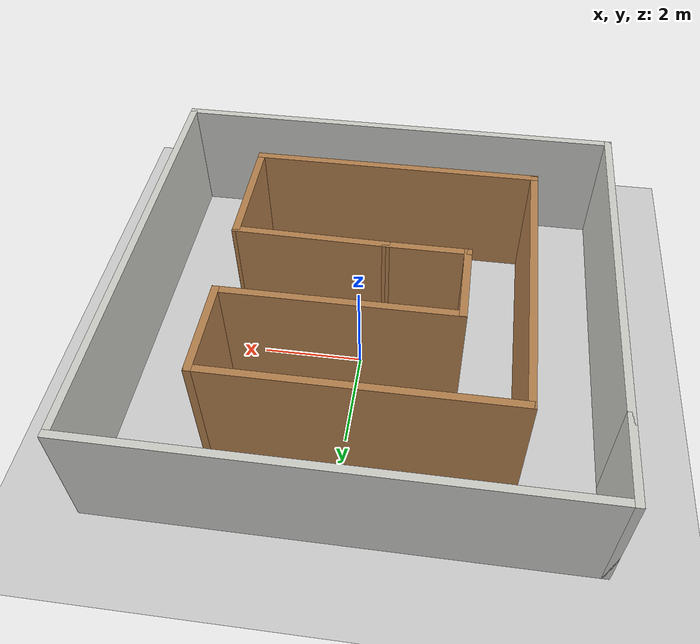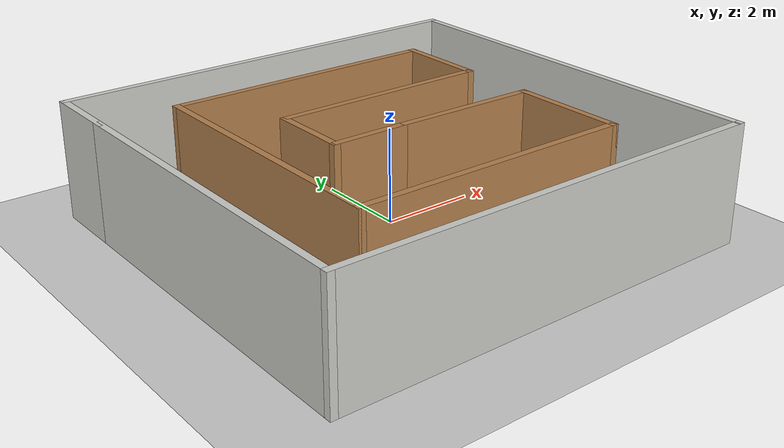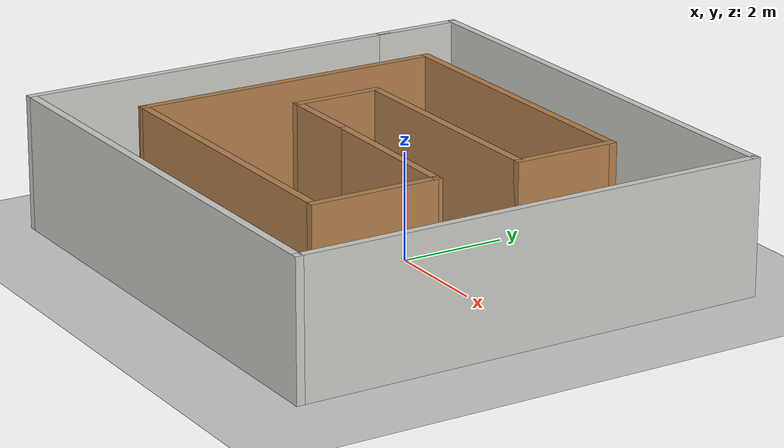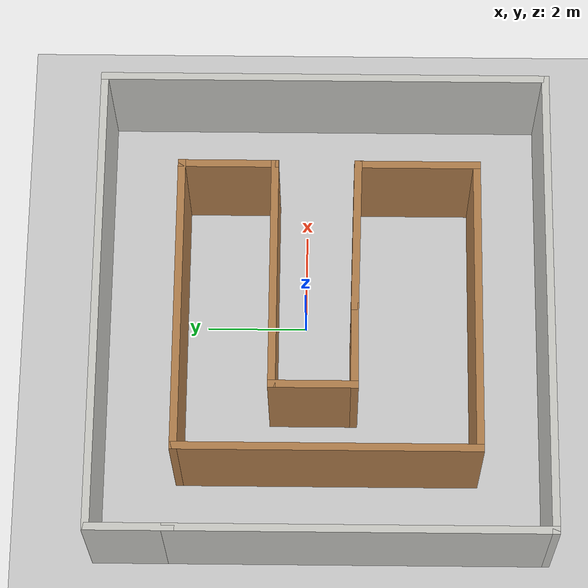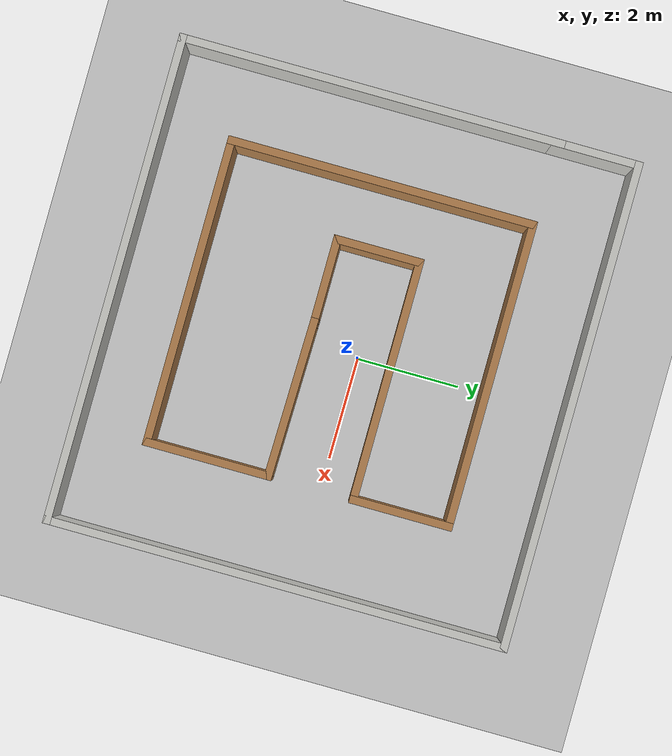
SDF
<sdf version="1.6">
 <world name="default">
  <model name="yarab_tany">
   <pose>-0.175 -0.335 0 0 -0 0</pose>
   <link name="Wall_10">
    <collision name="Wall_10_Collision">
     <geometry><box><size>6 0.15 2.5</size></box></geometry>
     <pose>0 0 1.25 0 -0 0</pose>
    </collision>
    <visual name="Wall_10_Visual">
     <pose>0 0 1.25 0 -0 0</pose>
     <geometry><box><size>6 0.15 2.5</size></box></geometry>
     <material>
      <script><uri>file://media/materials/scripts/gazebo.material</uri><name>Gazebo/Wood</name></script>
      <ambient>1 1 1 1</ambient>
     </material>
     <meta><layer>0</layer></meta>
    </visual>
    <pose>-0.15 2.825 0 0 -0 3.14159</pose>
   </link>
   <link name="Wall_11">
    <collision name="Wall_11_Collision">
     <geometry><box><size>6 0.15 2.5</size></box></geometry>
     <pose>0 0 1.25 0 -0 0</pose>
    </collision>
    <visual name="Wall_11_Visual">
     <pose>0 0 1.25 0 -0 0</pose>
     <geometry><box><size>6 0.15 2.5</size></box></geometry>
     <material>
      <script><uri>file://media/materials/scripts/gazebo.material</uri><name>Gazebo/Wood</name></script>
      <ambient>1 1 1 1</ambient>
     </material>
     <meta><layer>0</layer></meta>
    </visual>
    <pose>-3.075 -0.1 0 0 -0 -1.5708</pose>
   </link>
   <link name="Wall_13">
    <collision name="Wall_13_Collision">
     <geometry><box><size>6 0.15 2.5</size></box></geometry>
     <pose>0 0 1.25 0 -0 0</pose>
    </collision>
    <visual name="Wall_13_Visual">
     <pose>0 0 1.25 0 -0 0</pose>
     <geometry><box><size>6 0.15 2.5</size></box></geometry>
     <material>
      <script><uri>file://media/materials/scripts/gazebo.material</uri><name>Gazebo/Wood</name></script>
      <ambient>1 1 1 1</ambient>
     </material>
     <meta><layer>0</layer></meta>
    </visual>
    <pose>-0.15 -3.025 0 0 -0 0</pose>
   </link>
   <link name="Wall_14">
    <collision name="Wall_14_Collision">
     <geometry><box><size>2.5 0.15 2.5</size></box></geometry>
     <pose>0 0 1.25 0 -0 0</pose>
    </collision>
    <visual name="Wall_14_Visual">
     <pose>0 0 1.25 0 -0 0</pose>
     <geometry><box><size>2.5 0.15 2.5</size></box></geometry>
     <material>
      <script><uri>file://media/materials/scripts/gazebo.material</uri><name>Gazebo/Wood</name></script>
      <ambient>1 1 1 1</ambient>
     </material>
     <meta><layer>0</layer></meta>
    </visual>
    <pose>2.775 -1.85 0 0 -0 1.5708</pose>
   </link>
   <link name="Wall_15">
    <collision name="Wall_15_Collision">
     <geometry><box><size>3.15042 0.15 2.5</size></box></geometry>
     <pose>0 0 1.25 0 -0 0</pose>
    </collision>
    <visual name="Wall_15_Visual">
     <pose>0 0 1.25 0 -0 0</pose>
     <geometry><box><size>3.15042 0.15 2.5</size></box></geometry>
     <material>
      <script><uri>file://media/materials/scripts/gazebo.material</uri><name>Gazebo/Wood</name></script>
      <ambient>1 1 1 1</ambient>
     </material>
     <meta><layer>0</layer></meta>
    </visual>
    <pose>1.275 -0.65 0 0 -0 3.12493</pose>
   </link>
   <link name="Wall_18">
    <collision name="Wall_18_Collision">
     <geometry><box><size>1.75 0.15 2.5</size></box></geometry>
     <pose>0 0 1.25 0 -0 0</pose>
    </collision>
    <visual name="Wall_18_Visual">
     <pose>0 0 1.25 0 -0 0</pose>
     <geometry><box><size>1.75 0.15 2.5</size></box></geometry>
     <material>
      <script><uri>file://media/materials/scripts/gazebo.material</uri><name>Gazebo/CeilingTiled</name></script>
      <ambient>1 1 1 1</ambient>
     </material>
     <meta><layer>0</layer></meta>
    </visual>
    <pose>-4.675 3.625 0 0 -0 1.5708</pose>
   </link>
   <link name="Wall_19">
    <collision name="Wall_19_Collision">
     <geometry><box><size>9.5 0.15 2.5</size></box></geometry>
     <pose>0 0 1.25 0 -0 0</pose>
    </collision>
    <visual name="Wall_19_Visual">
     <pose>0 0 1.25 0 -0 0</pose>
     <geometry><box><size>9.5 0.15 2.5</size></box></geometry>
     <material>
      <script><uri>file://media/materials/scripts/gazebo.material</uri><name>Gazebo/CeilingTiled</name></script>
      <ambient>1 1 1 1</ambient>
     </material>
     <meta><layer>0</layer></meta>
    </visual>
    <pose>-0 4.425 0 0 -0 0</pose>
   </link>
   <link name="Wall_20">
    <collision name="Wall_20_Collision">
     <geometry><box><size>9 0.15 2.5</size></box></geometry>
     <pose>0 0 1.25 0 -0 0</pose>
    </collision>
    <visual name="Wall_20_Visual">
     <pose>0 0 1.25 0 -0 0</pose>
     <geometry><box><size>9 0.15 2.5</size></box></geometry>
     <material>
      <script><uri>file://media/materials/scripts/gazebo.material</uri><name>Gazebo/CeilingTiled</name></script>
      <ambient>1 1 1 1</ambient>
     </material>
     <meta><layer>0</layer></meta>
    </visual>
    <pose>4.675 0 0 0 -0 -1.5708</pose>
   </link>
   <link name="Wall_21">
    <collision name="Wall_21_Collision">
     <geometry><box><size>9.5 0.15 2.5</size></box></geometry>
     <pose>0 0 1.25 0 -0 0</pose>
    </collision>
    <visual name="Wall_21_Visual">
     <pose>0 0 1.25 0 -0 0</pose>
     <geometry><box><size>9.5 0.15 2.5</size></box></geometry>
     <material>
      <script><uri>file://media/materials/scripts/gazebo.material</uri><name>Gazebo/CeilingTiled</name></script>
      <ambient>1 1 1 1</ambient>
     </material>
     <meta><layer>0</layer></meta>
    </visual>
    <pose>-0 -4.425 0 0 -0 3.14159</pose>
   </link>
   <link name="Wall_22">
    <collision name="Wall_22_Collision">
     <geometry><box><size>7.5 0.15 2.5</size></box></geometry>
     <pose>0 0 1.25 0 -0 0</pose>
    </collision>
    <visual name="Wall_22_Visual">
     <pose>0 0 1.25 0 -0 0</pose>
     <geometry><box><size>7.5 0.15 2.5</size></box></geometry>
     <material>
      <script><uri>file://media/materials/scripts/gazebo.material</uri><name>Gazebo/CeilingTiled</name></script>
      <ambient>1 1 1 1</ambient>
     </material>
     <meta><layer>0</layer></meta>
    </visual>
    <pose>-4.675 -0.75 0 0 -0 1.5708</pose>
   </link>
   <link name="Wall_4">
    <collision name="Wall_4_Collision">
     <geometry><box><size>1.75 0.15 2.5</size></box></geometry>
     <pose>0 0 1.25 0 -0 0</pose>
    </collision>
    <visual name="Wall_4_Visual">
     <pose>0 0 1.25 0 -0 0</pose>
     <geometry><box><size>1.75 0.15 2.5</size></box></geometry>
     <material>
      <script><uri>file://media/materials/scripts/gazebo.material</uri><name>Gazebo/Wood</name></script>
      <ambient>1 1 1 1</ambient>
     </material>
     <meta><layer>0</layer></meta>
    </visual>
    <pose>-1.025 -0.625 0 0 -0 3.14159</pose>
   </link>
   <link name="Wall_5">
    <collision name="Wall_5_Collision">
     <geometry><box><size>1.75 0.15 2.5</size></box></geometry>
     <pose>0 0 1.25 0 -0 0</pose>
    </collision>
    <visual name="Wall_5_Visual">
     <pose>0 0 1.25 0 -0 0</pose>
     <geometry><box><size>1.75 0.15 2.5</size></box></geometry>
     <material>
      <script><uri>file://media/materials/scripts/gazebo.material</uri><name>Gazebo/Wood</name></script>
      <ambient>1 1 1 1</ambient>
     </material>
     <meta><layer>0</layer></meta>
    </visual>
    <pose>-1.825 0.175 0 0 -0 1.5708</pose>
   </link>
   <link name="Wall_6">
    <collision name="Wall_6_Collision">
     <geometry><box><size>4.75 0.15 2.5</size></box></geometry>
     <pose>0 0 1.25 0 -0 0</pose>
    </collision>
    <visual name="Wall_6_Visual">
     <pose>0 0 1.25 0 -0 0</pose>
     <geometry><box><size>4.75 0.15 2.5</size></box></geometry>
     <material>
      <script><uri>file://media/materials/scripts/gazebo.material</uri><name>Gazebo/Wood</name></script>
      <ambient>1 1 1 1</ambient>
     </material>
     <meta><layer>0</layer></meta>
    </visual>
    <pose>0.475 0.975 0 0 -0 0</pose>
   </link>
   <link name="Wall_9">
    <collision name="Wall_9_Collision">
     <geometry><box><size>2 0.15 2.5</size></box></geometry>
     <pose>0 0 1.25 0 -0 0</pose>
    </collision>
    <visual name="Wall_9_Visual">
     <pose>0 0 1.25 0 -0 0</pose>
     <geometry><box><size>2 0.15 2.5</size></box></geometry>
     <material>
      <script><uri>file://media/materials/scripts/gazebo.material</uri><name>Gazebo/Wood</name></script>
      <ambient>1 1 1 1</ambient>
     </material>
     <meta><layer>0</layer></meta>
    </visual>
    <pose>2.775 1.9 0 0 -0 1.5708</pose>
   </link>
   <static>1</static>
  </model>
  <include><uri>model://ground_plane</uri></include>
  <include><uri>model://sun</uri></include>
 </world>
</sdf>
